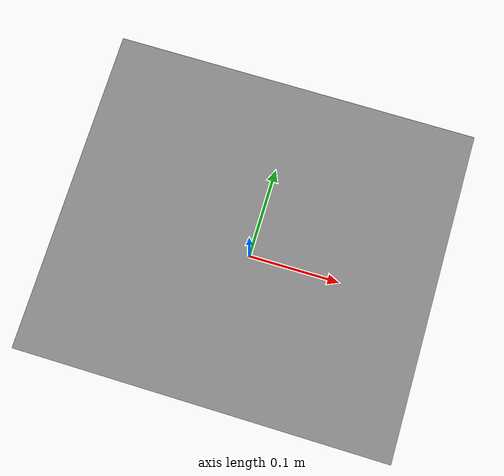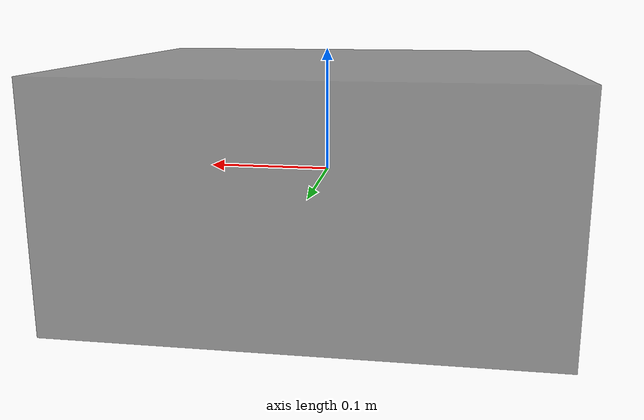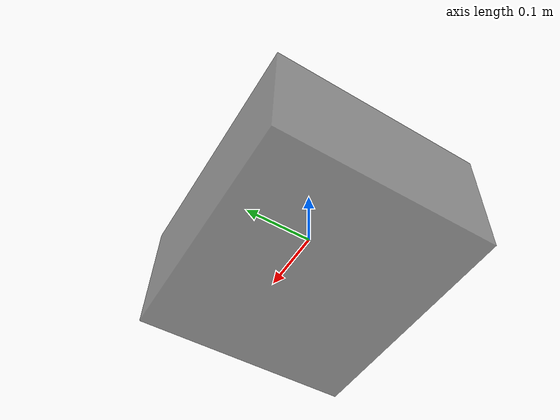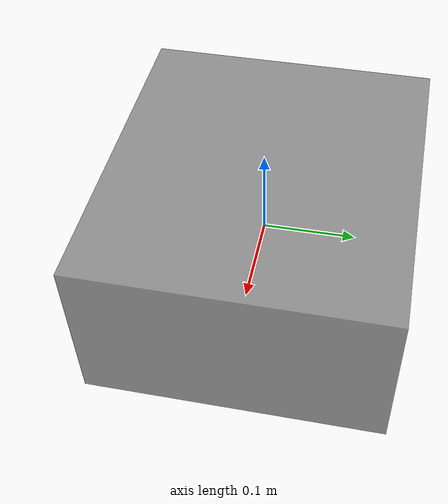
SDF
<?xml version="1.0"?>
<sdf version="1.7">
  <model name="box">
    <link name="base">
      <inertial>
        <mass>0.028</mass>
        <inertia>
          <ixx>1.17e-5</ixx>
          <ixy>0</ixy>
          <ixz>0</ixz>
          <iyy>1.9e-5</iyy>
          <iyz>0</iyz>
          <izz>1.9e-5</izz>
        </inertia>
      </inertial>
      <visual name="base_visual">
        <geometry>
          <box>
            <size>.36 .32 .18</size>
          </box>
        </geometry>
        <material>
          <diffuse>.4 .4 .4 0.7</diffuse>
        </material>
      </visual>
      </link>
  </model>
</sdf>
